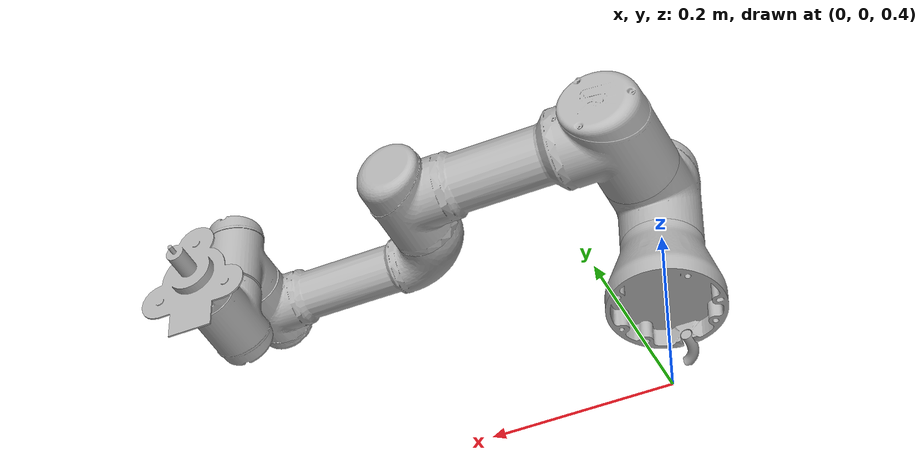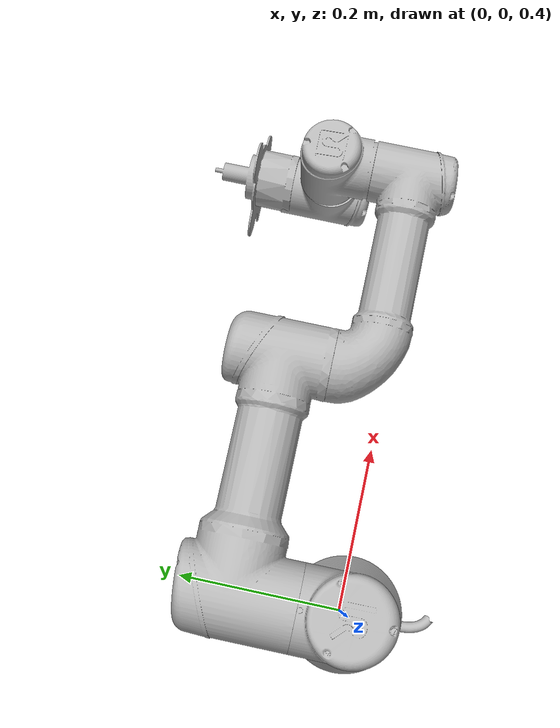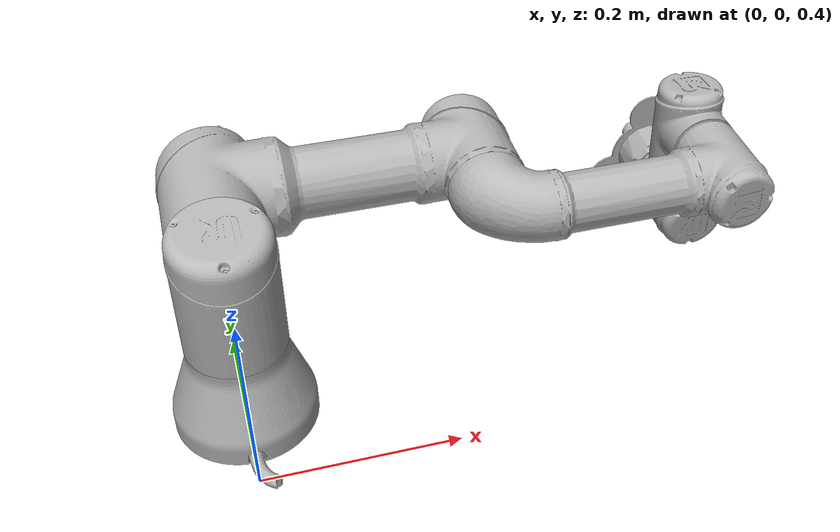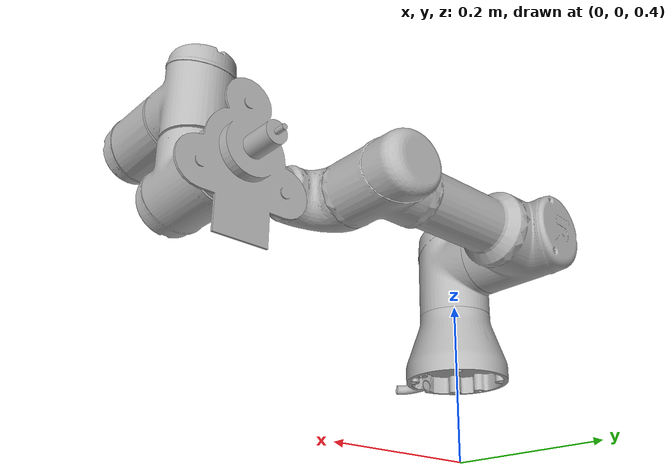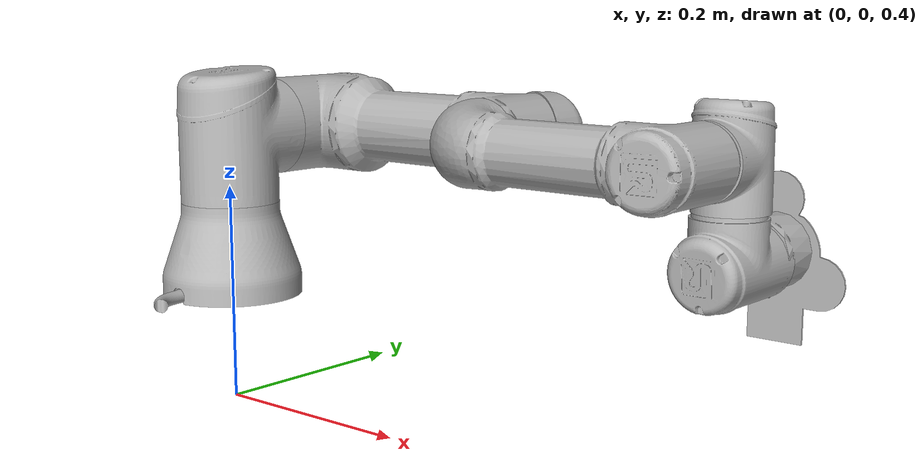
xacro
<?xml version="1.0" encoding="utf-8"?>
<!-- |    This document was autogenerated by xacro from ur3_robot.urdf.xacro           | -->
<!-- |    EDITING THIS FILE BY HAND IS NOT RECOMMENDED                                 | -->
<robot name="ur3" xmlns:xacro="http://wiki.ros.org/xacro">
    <xacro:include filename="$(find ur_description)/urdf/Hokuyo.xacro"/>
    <xacro:hokuyo prefix=""/>

  <!--
  Author: Felix Messmer
-->
  <!-- measured from model -->

  <link name="world"/>

    <joint name="world_to_base" type="fixed">
        <parent link="world"/>
        <child link="ur3_base_link"/>
        <origin xyz="0 0 0.5"/>
    </joint>

  <link name="ur3_base_link">
    <visual>
      <geometry>
        <mesh filename="package://ur_description/meshes/ur3/visual/base.dae"/>
      </geometry>
      <material name="LightGrey">
        <color rgba="0.7 0.7 0.7 1.0"/>
      </material>
    </visual>
    <collision>
      <geometry>
        <mesh filename="package://ur_description/meshes/ur3/collision/base.stl"/>
      </geometry>
    </collision>
    <inertial>
      <mass value="2.0"/>
      <origin rpy="0 0 0" xyz="0.0 0.0 0.0"/>
      <inertia ixx="0.0030531654454" ixy="0.0" ixz="0.0" iyy="0.0030531654454" iyz="0.0" izz="0.005625"/>
    </inertial>
  </link>
  <joint name="shoulder_link_joint" type="revolute">
    <parent link="ur3_base_link"/>
    <child link="shoulder_link"/>
    <origin rpy="0.0 0.0 0.0" xyz="0.0 0.0 0.1519"/>
    <axis xyz="0 0 1"/>
    <limit effort="330.0" lower="-6.28318530718" upper="6.28318530718" velocity="2.16"/>
    <dynamics damping="0.0" friction="0.0"/>
  </joint>
  <link name="shoulder_link">
    <visual>
      <geometry>
        <mesh filename="package://ur_description/meshes/ur3/visual/shoulder.dae"/>
      </geometry>
      <material name="LightGrey">
        <color rgba="0.7 0.7 0.7 1.0"/>
      </material>
    </visual>
    <collision>
      <geometry>
        <mesh filename="package://ur_description/meshes/ur3/collision/shoulder.stl"/>
      </geometry>
    </collision>
    <inertial>
      <mass value="2.0"/>
      <origin rpy="0 0 0" xyz="0.0 0.0 0.0"/>
      <inertia ixx="0.0080931634294" ixy="0.0" ixz="0.0" iyy="0.0080931634294" iyz="0.0" izz="0.005625"/>
    </inertial>
  </link>
  <joint name="upper_arm_link_joint" type="revolute">
    <parent link="shoulder_link"/>
    <child link="upper_arm_link"/>
    <origin rpy="0.0 1.57079632679 0.0" xyz="0.0 0.1198 0.0"/>
    <axis xyz="0 1 0"/>
    <limit effort="330.0" lower="-6.28318530718" upper="6.28318530718" velocity="2.16"/>
    <dynamics damping="0.0" friction="0.0"/>
  </joint>
  <link name="upper_arm_link">
    <visual>
      <geometry>
        <mesh filename="package://ur_description/meshes/ur3/visual/upperarm.dae"/>
      </geometry>
      <material name="LightGrey">
        <color rgba="0.7 0.7 0.7 1.0"/>
      </material>
    </visual>
    <collision>
      <geometry>
        <mesh filename="package://ur_description/meshes/ur3/collision/upperarm.stl"/>
      </geometry>
    </collision>
    <inertial>
      <mass value="3.42"/>
      <origin rpy="0 0 0" xyz="0.0 0.0 0.121825"/>
      <inertia ixx="0.0217284832211" ixy="0.0" ixz="0.0" iyy="0.0217284832211" iyz="0.0" izz="0.00961875"/>
    </inertial>
  </link>
  <joint name="forearm_link_joint" type="revolute">
    <parent link="upper_arm_link"/>
    <child link="forearm_link"/>
    <origin rpy="0.0 0.0 0.0" xyz="0.0 -0.0925 0.24365"/>
    <axis xyz="0 1 0"/>
    <limit effort="150.0" lower="-3.14159265359" upper="3.14159265359" velocity="3.15"/>
    <dynamics damping="0.0" friction="0.0"/>
  </joint>
  <link name="forearm_link">
    <visual>
      <geometry>
        <mesh filename="package://ur_description/meshes/ur3/visual/forearm.dae"/>
      </geometry>
      <material name="LightGrey">
        <color rgba="0.7 0.7 0.7 1.0"/>
      </material>
    </visual>
    <collision>
      <geometry>
        <mesh filename="package://ur_description/meshes/ur3/collision/forearm.stl"/>
      </geometry>
    </collision>
    <inertial>
      <mass value="1.26"/>
      <origin rpy="0 0 0" xyz="0.0 0.0 0.106625"/>
      <inertia ixx="0.00654680644378" ixy="0.0" ixz="0.0" iyy="0.00654680644378" iyz="0.0" izz="0.00354375"/>
    </inertial>
  </link>
  <joint name="wrist_1_joint" type="revolute">
    <parent link="forearm_link"/>
    <child link="wrist_1_link"/>
    <origin rpy="0.0 1.57079632679 0.0" xyz="0.0 0.0 0.21325"/>
    <axis xyz="0 1 0"/>
    <limit effort="54.0" lower="-6.28318530718" upper="6.28318530718" velocity="3.2"/>
    <dynamics damping="0.0" friction="0.0"/>
  </joint>
  <link name="wrist_1_link">
    <visual>
      <geometry>
        <mesh filename="package://ur_description/meshes/ur3/visual/wrist1.dae"/>
      </geometry>
      <material name="LightGrey">
        <color rgba="0.7 0.7 0.7 1.0"/>
      </material>
    </visual>
    <collision>
      <geometry>
        <mesh filename="package://ur_description/meshes/ur3/collision/wrist1.stl"/>
      </geometry>
    </collision>
    <inertial>
      <mass value="0.8"/>
      <origin rpy="0 0 0" xyz="0.0 0.08505 0.0"/>
      <inertia ixx="0.002084999166" ixy="0.0" ixz="0.0" iyy="0.002084999166" iyz="0.0" izz="0.00225"/>
    </inertial>
  </link>
  <joint name="wrist_2_joint" type="revolute">
    <parent link="wrist_1_link"/>
    <child link="wrist_2_link"/>
    <origin rpy="0.0 0.0 0.0" xyz="0.0 0.08505 0.0"/>
    <axis xyz="0 0 1"/>
    <limit effort="54.0" lower="-6.28318530718" upper="6.28318530718" velocity="3.2"/>
    <dynamics damping="0.0" friction="0.0"/>
  </joint>
  <link name="wrist_2_link">
    <visual>
      <geometry>
        <mesh filename="package://ur_description/meshes/ur3/visual/wrist2.dae"/>
      </geometry>
      <material name="LightGrey">
        <color rgba="0.7 0.7 0.7 1.0"/>
      </material>
    </visual>
    <collision>
      <geometry>
        <mesh filename="package://ur_description/meshes/ur3/collision/wrist2.stl"/>
      </geometry>
    </collision>
    <inertial>
      <mass value="0.8"/>
      <origin rpy="0 0 0" xyz="0.0 0.0 0.08535"/>
      <inertia ixx="0.002084999166" ixy="0.0" ixz="0.0" iyy="0.002084999166" iyz="0.0" izz="0.00225"/>
    </inertial>
  </link>
  <joint name="wrist_3_joint" type="revolute">
    <parent link="wrist_2_link"/>
    <child link="wrist_3_link"/>
    <origin rpy="0.0 0.0 0.0" xyz="0.0 0.0 0.08535"/>
    <axis xyz="0 1 0"/>
    <limit effort="54.0" lower="-6.28318530718" upper="6.28318530718" velocity="3.2"/>
    <dynamics damping="0.0" friction="0.0"/>
  </joint>
  <link name="wrist_3_link">
    <visual>
      <geometry>
        <mesh filename="package://ur_description/meshes/ur3/visual/wrist3.dae"/>
      </geometry>
      <material name="LightGrey">
        <color rgba="0.7 0.7 0.7 1.0"/>
      </material>
    </visual>
    <collision>
      <geometry>
        <mesh filename="package://ur_description/meshes/ur3/collision/wrist3.stl"/>
      </geometry>
    </collision>
    <inertial>
      <mass value="0.35"/>
      <origin rpy="1.57079632679 0 0" xyz="0.0 0.0619 0.0"/>
      <inertia ixx="0.00013626661216" ixy="0.0" ixz="0.0" iyy="0.00013626661216" iyz="0.0" izz="0.0001792"/>
    </inertial>
  </link>
  <joint name="ee_fixed_joint" type="fixed">
    <parent link="wrist_3_link"/>
    <child link="ee_link"/>
    <origin rpy="0 3.14159265359 -1.57079632679" xyz="0.0 0.0819 0.0"/>
  </joint>

  <link name="ee_link">
    <visual>
      <origin xyz="0 0 0" rpy="0 -1.57079632679 0"/>
      <geometry>
        <mesh filename="package://ur_description/meshes/ur3/visual/RANGE_SENSOR.dae"/>
      </geometry>
      <material name="LightGrey">
        <color rgba="0.7 0.7 0.7 1.0"/>
      </material>
    </visual>

    <collision>
      <geometry>
        <box size="0.01 0.01 0.01"/>
      </geometry>
      <origin rpy="0 0 0" xyz="-0.01 0 0"/>
    </collision>
    <inertial>
      <mass value="2.0"/>
      <origin rpy="0 0 0" xyz="0.0 0.0 0.0"/>
      <inertia ixx="0.1" ixy="0.0" ixz="0.0" iyy="0.1" iyz="0.0" izz="0.1"/>
    </inertial>
  </link>
  <transmission name="shoulder_link_trans">
    <type>transmission_interface/SimpleTransmission</type>
    <joint name="shoulder_link_joint">
      <hardwareInterface>hardware_interface/PositionJointInterface</hardwareInterface>
    </joint>
    <actuator name="shoulder_link_motor">
      <mechanicalReduction>1</mechanicalReduction>
    </actuator>
  </transmission>
  <transmission name="upper_arm_link_trans">
    <type>transmission_interface/SimpleTransmission</type>
    <joint name="upper_arm_link_joint">
      <hardwareInterface>hardware_interface/PositionJointInterface</hardwareInterface>
    </joint>
    <actuator name="upper_arm_link_motor">
      <mechanicalReduction>1</mechanicalReduction>
    </actuator>
  </transmission>
  <transmission name="forearm_link_trans">
    <type>transmission_interface/SimpleTransmission</type>
    <joint name="forearm_link_joint">
      <hardwareInterface>hardware_interface/PositionJointInterface</hardwareInterface>
    </joint>
    <actuator name="forearm_link_motor">
      <mechanicalReduction>1</mechanicalReduction>
    </actuator>
  </transmission>
  <transmission name="wrist_1_trans">
    <type>transmission_interface/SimpleTransmission</type>
    <joint name="wrist_1_joint">
      <hardwareInterface>hardware_interface/PositionJointInterface</hardwareInterface>
    </joint>
    <actuator name="wrist_1_motor">
      <mechanicalReduction>1</mechanicalReduction>
    </actuator>
  </transmission>
  <transmission name="wrist_2_trans">
    <type>transmission_interface/SimpleTransmission</type>
    <joint name="wrist_2_joint">
      <hardwareInterface>hardware_interface/PositionJointInterface</hardwareInterface>
    </joint>
    <actuator name="wrist_2_motor">
      <mechanicalReduction>1</mechanicalReduction>
    </actuator>
  </transmission>
  <transmission name="wrist_3_trans">
    <type>transmission_interface/SimpleTransmission</type>
    <joint name="wrist_3_joint">
      <hardwareInterface>hardware_interface/PositionJointInterface</hardwareInterface>
    </joint>
    <actuator name="wrist_3_motor">
      <mechanicalReduction>1</mechanicalReduction>
    </actuator>
  </transmission>

  <gazebo reference="base">
    <selfCollide>true</selfCollide>
  </gazebo>
  <gazebo reference="ur3_base_link">
    <selfCollide>true</selfCollide>
  </gazebo>
  <gazebo reference="shoulder_link">
    <selfCollide>true</selfCollide>
  </gazebo>
  <gazebo reference="upper_arm_link">
    <selfCollide>true</selfCollide>
  </gazebo>
  <gazebo reference="forearm_link">
    <selfCollide>true</selfCollide>
  </gazebo>
  <gazebo reference="wrist_1_link">
    <selfCollide>true</selfCollide>
  </gazebo>
  <gazebo reference="wrist_3_link">
    <selfCollide>true</selfCollide>
  </gazebo>
  <gazebo reference="wrist_2_link">
    <selfCollide>true</selfCollide>
  </gazebo>
  <gazebo reference="ee_link">
    <selfCollide>true</selfCollide>
  </gazebo>

  <gazebo reference='ee_fixed_joint'>
    <preserveFixedJoint>true</preserveFixedJoint>
  </gazebo>

  <!-- ROS ur3_base_link to UR 'Base' Coordinates transform -->

  <!-- Frame coincident with all-zeros TCP on UR controller -->
  <link name="tool0">
    <inertial>
      <mass value="2.0"/>
      <origin rpy="0 0 0" xyz="0.0 0.0 0.0"/>
      <inertia ixx="0.1" ixy="0.0" ixz="0.0" iyy="0.1" iyz="0.0" izz="0.1"/>
    </inertial>
  </link>
  <joint name="wrist_3_link-tool0_fixed_joint" type="fixed">
    <origin rpy="-1.57079632679 0 0" xyz="0 0.0819 0"/>
    <parent link="wrist_3_link"/>
    <child link="tool0"/>
  </joint>

</robot>

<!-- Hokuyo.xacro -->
<robot xmlns:xacro="http://www.ros.org/wiki/xacro" name="hokuyo_sensor" >
  <xacro:macro name="hokuyo" params="prefix">

  <!-- Hokuyo Laser Front-->
  <link name="ur3_laser1_link">
    <inertial>
      <mass value="1e-5" />
      <origin xyz="0.0 0 0.0" rpy="0 0 0"/>
      <inertia ixx="1e-6" ixy="0" ixz="0" iyy="1e-6" iyz="0" izz="1e-6" />
    </inertial>
  </link>

  <link name="ur3_laser2_link">
    <inertial>
      <mass value="1e-5" />
      <origin xyz="0 0 0" rpy="0 0 0"/>
      <inertia ixx="1e-6" ixy="0" ixz="0" iyy="1e-6" iyz="0" izz="1e-6" />
    </inertial>
  </link>

  <link name="ur3_laser3_link">
    <inertial>
      <mass value="1e-5" />
      <origin xyz="0 0 0" rpy="0 0 0"/>
      <inertia ixx="1e-6" ixy="0" ixz="0" iyy="1e-6" iyz="0" izz="1e-6" />
    </inertial>
  </link>

  <joint name="ur3_laser1_joint" type="fixed">
    <origin xyz="0.0 0 0.045" rpy="0 0 0"/>
    <axis xyz="0 1 0" />
    <parent link="ee_link"/>
    <child link="ur3_laser1_link"/>
  </joint>

  <joint name="ur3_laser2_joint" type="fixed">
    <origin xyz="0 -0.03897 -0.0225" rpy="0 0 0"/>
    <axis xyz="0 1 0" />
    <parent link="ee_link"/>
    <child link="ur3_laser2_link"/>
  </joint>

  <joint name="ur3_laser3_joint" type="fixed">
    <origin xyz="0 0.03897 -0.0225" rpy="0 0 0"/>
    <axis xyz="0 1 0" />
    <parent link="ee_link"/>
    <child link="ur3_laser3_link"/>
  </joint>

  <gazebo reference='ur3_laser1_joint'>
    <preserveFixedJoint>true</preserveFixedJoint>
  </gazebo>

  <gazebo reference='ur3_laser2_joint'>
    <preserveFixedJoint>true</preserveFixedJoint>
  </gazebo>

  <gazebo reference='ur3_laser3_joint'>
    <preserveFixedJoint>true</preserveFixedJoint>
  </gazebo>

    <!-- hokuyo -->
    <gazebo reference="ur3_laser1_link">
      <sensor type="gpu_ray" name="ur3_laser_sensor1">
        <pose>0 0 0 0 0 0</pose>
        <visualize>true</visualize>
        <update_rate>40</update_rate>
        <ray>
          <scan>
            <horizontal>
              <samples>3</samples>
              <resolution>1</resolution>
              <min_angle>-0.01</min_angle>
              <max_angle>0.01</max_angle>
            </horizontal>
          </scan>
          <range>
            <min>0.05</min>
            <max>30.0</max>
            <resolution>0.01</resolution>
          </range>
        </ray>
        <plugin name="gazebo_ros_head_hokuyo_controller" filename="libgazebo_ros_gpu_laser.so">
          <topicName>/ur3/laser1/scan</topicName>
          <frameName>ee_link</frameName>
        </plugin>
      </sensor>
    </gazebo>

    <gazebo reference="ur3_laser2_link">
      <sensor type="gpu_ray" name="ur3_laser_sensor2">
        <pose>0 0 0 0 0 0</pose>
        <visualize>true</visualize>
        <update_rate>40</update_rate>
                <ray>
          <scan>
            <horizontal>
              <samples>3</samples>
              <resolution>1</resolution>
              <min_angle>-0.01</min_angle>
              <max_angle>0.01</max_angle>
            </horizontal>
          </scan>
          <range>
            <min>0.05</min>
            <max>30.0</max>
            <resolution>0.01</resolution>
          </range>
        </ray>
        <plugin name="gazebo_ros_head_hokuyo_controller" filename="libgazebo_ros_gpu_laser.so">
          <topicName>/ur3/laser2/scan</topicName>
          <frameName>ee_link</frameName>
        </plugin>
      </sensor>
    </gazebo>

    <gazebo reference="ur3_laser3_link">
      <sensor type="gpu_ray" name="ur3_laser_sensor3">
        <pose>0 0 0 0 0 0</pose>
        <visualize>true</visualize>
        <update_rate>40</update_rate>
                <ray>
          <scan>
            <horizontal>
              <samples>3</samples>
              <resolution>1</resolution>
              <min_angle>-0.01</min_angle>
              <max_angle>0.01</max_angle>
            </horizontal>
          </scan>
          <range>
            <min>0.05</min>
            <max>30.0</max>
            <resolution>0.01</resolution>
          </range>
        </ray>
        <plugin name="gazebo_ros_head_hokuyo_controller" filename="libgazebo_ros_gpu_laser.so">
          <topicName>/ur3/laser3/scan</topicName>
          <frameName>ee_link</frameName>
        </plugin>
      </sensor>
    </gazebo>

  </xacro:macro>>
</robot>
